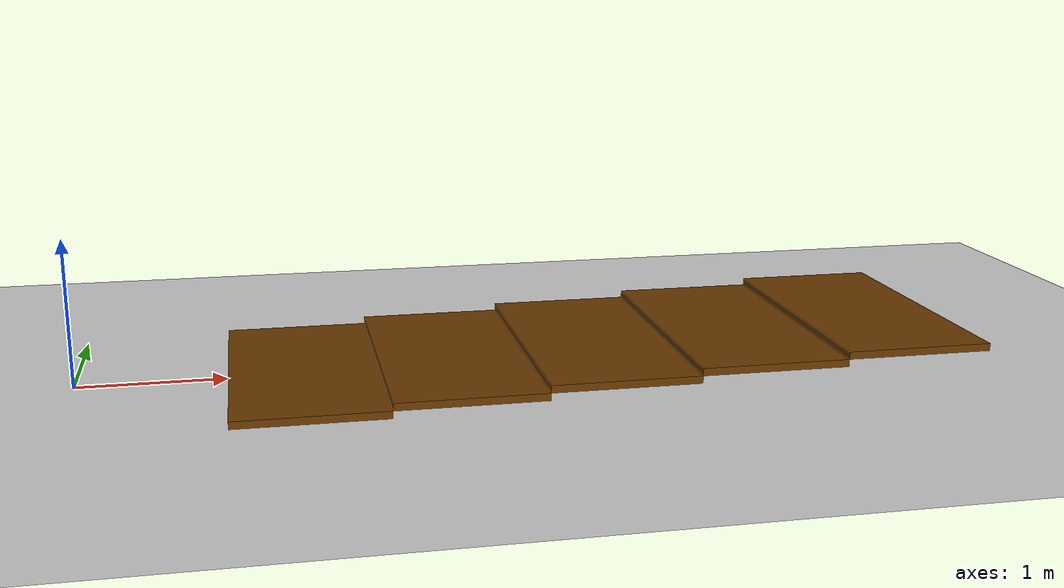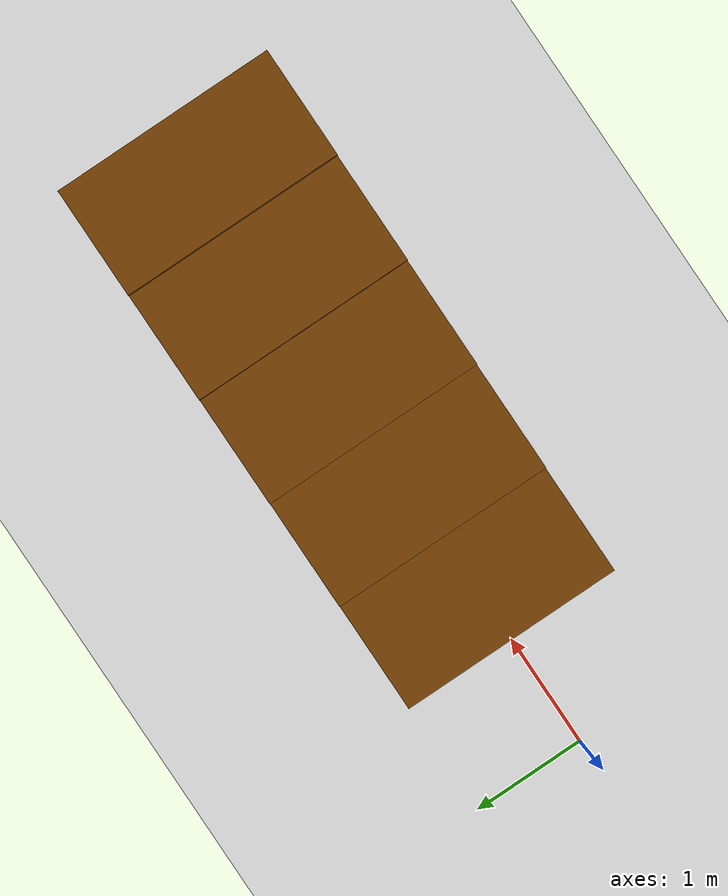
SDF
<?xml version="1.0" ?>
<sdf version="1.5">
    <world name="default">

        <!-- 物理设置 -->
        <physics type="ode">
            <max_step_size>0.0002</max_step_size>
            <real_time_factor>1</real_time_factor>
            <real_time_update_rate>5000</real_time_update_rate>
            <gravity>0 0 -9.81</gravity>
            <ode>
                <solver>
                    <type>quick</type>
                    <iters>50</iters>
                    <sor>1.3</sor>
                </solver>
                <constraints>
                    <cfm>0.0</cfm>
                    <erp>0.2</erp>
                    <contact_max_correcting_vel>10.0</contact_max_correcting_vel>
                    <contact_surface_layer>0.001</contact_surface_layer>
                </constraints>
            </ode>
        </physics>

        <!-- 场景设置 -->
        <scene>
            <sky>
                <clouds>
                    <speed>12</speed>
                </clouds>
            </sky>
        </scene>

        <!-- 全局光源 -->
        <include>
            <uri>model://sun</uri>
        </include>

        <!-- 地面 -->
        <include>
            <uri>model://ground_plane</uri>
        </include>

        <!-- 五阶台阶 -->
        <model name="five_steps">
            <static>true</static>

            <!-- 第一阶 -->
            <link name="step_1">
                <pose>1.5 0 0.025 0 0 0</pose> <!-- [修改点 1-1] x=1.5 (原点偏移 1.5m) -->
                <collision name="step_collision_1">
                    <geometry>
                        <box>
                            <size>1.0 2.0 0.05</size> <!-- 保持长 1.0m, 宽 2.0m -->
                        </box>
                    </geometry>
                    <friction>
                        <ode>
                            <mu>1.5</mu>
                        </ode>
                    </friction>
                </collision>
                <visual name="step_visual_1">
                    <geometry>
                        <box>
                            <size>1.0 2.0 0.05</size>
                        </box>
                    </geometry>
                    <material>
                        <ambient>0.2 0.2 0.2 1.0</ambient>
                        <diffuse>0.421 0.225 0.0 1.0</diffuse>
                    </material>
                </visual>
                <gravity>true</gravity>
                <self_collide>true</self_collide>
            </link>

            <!-- 第二阶 -->
            <link name="step_2">
                <pose>2.5 0 0.075 0 0 0</pose> <!-- [修改点 2-1] x=2.5 (1.5+1.0) -->
                <collision name="step_collision_2">
                    <geometry>
                        <box>
                            <size>1.0 2.0 0.05</size>
                        </box>
                    </geometry>
                    <friction>
                        <ode>
                            <mu>1.5</mu>
                        </ode>
                    </friction>
                </collision>
                <visual name="step_visual_2">
                    <geometry>
                        <box>
                            <size>1.0 2.0 0.05</size>
                        </box>
                    </geometry>
                    <material>
                        <ambient>0.2 0.2 0.2 1.0</ambient>
                        <diffuse>0.421 0.225 0.0 1.0</diffuse>
                    </material>
                </visual>
                <gravity>true</gravity>
                <self_collide>true</self_collide>
            </link>

            <!-- 第三阶 -->
            <link name="step_3">
                <pose>3.5 0 0.125 0 0 0</pose> <!-- [修改点 3-1] x=3.5 (2.5+1.0) -->
                <collision name="step_collision_3">
                    <geometry>
                        <box>
                            <size>1.0 2.0 0.05</size>
                        </box>
                    </geometry>
                    <friction>
                        <ode>
                            <mu>1.5</mu>
                        </ode>
                    </friction>
                </collision>
                <visual name="step_visual_3">
                    <geometry>
                        <box>
                            <size>1.0 2.0 0.05</size>
                        </box>
                    </geometry>
                    <material>
                        <ambient>0.2 0.2 0.2 1.0</ambient>
                        <diffuse>0.421 0.225 0.0 1.0</diffuse>
                    </material>
                </visual>
                <gravity>true</gravity>
                <self_collide>true</self_collide>
            </link>

            <!-- 第四阶 -->
            <link name="step_4">
                <pose>4.5 0 0.175 0 0 0</pose> <!-- [修改点 4-1] x=4.5 (3.5+1.0) -->
                <collision name="step_collision_4">
                    <geometry>
                        <box>
                            <size>1.0 2.0 0.05</size>
                        </box>
                    </geometry>
                    <friction>
                        <ode>
                            <mu>1.5</mu>
                        </ode>
                    </friction>
                </collision>
                <visual name="step_visual_4">
                    <geometry>
                        <box>
                            <size>1.0 2.0 0.05</size>
                        </box>
                    </geometry>
                    <material>
                        <ambient>0.2 0.2 0.2 1.0</ambient>
                        <diffuse>0.421 0.225 0.0 1.0</diffuse>
                    </material>
                </visual>
                <gravity>true</gravity>
                <self_collide>true</self_collide>
            </link>

            <!-- 第五阶 -->
            <link name="step_5">
                <pose>5.5 0 0.225 0 0 0</pose> <!-- [修改点 5-1] x=5.5 (4.5+1.0) -->
                <collision name="step_collision_5">
                    <geometry>
                        <box>
                            <size>1.0 2.0 0.05</size>
                        </box>
                    </geometry>
                    <friction>
                        <ode>
                            <mu>1.5</mu>
                        </ode>
                    </friction>
                </collision>
                <visual name="step_visual_5">
                    <geometry>
                        <box>
                            <size>1.0 2.0 0.05</size>
                        </box>
                    </geometry>
                    <material>
                        <ambient>0.2 0.2 0.2 1.0</ambient>
                        <diffuse>0.421 0.225 0.0 1.0</diffuse>
                    </material>
                </visual>
                <gravity>true</gravity>
                <self_collide>true</self_collide>
            </link>
        </model>

    </world>
</sdf>
